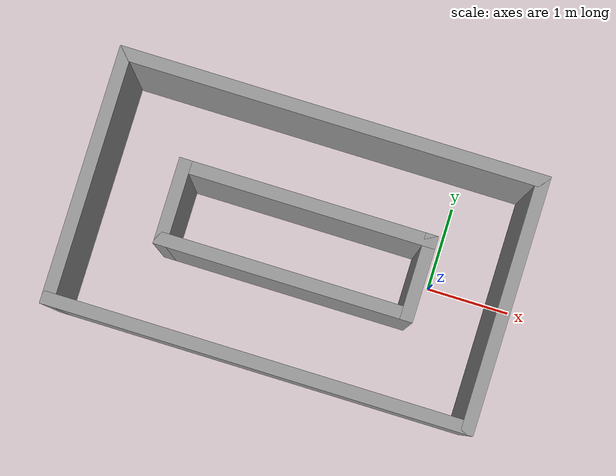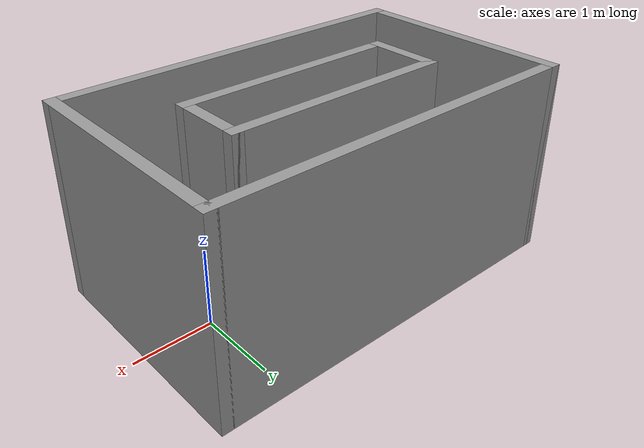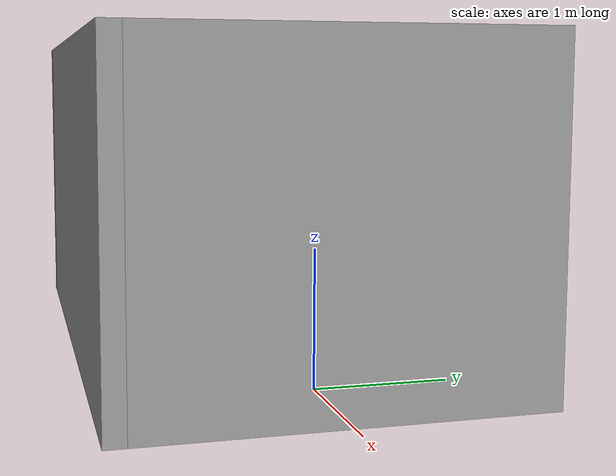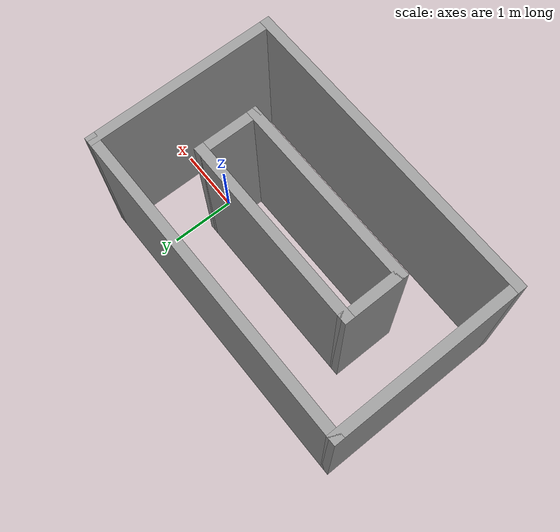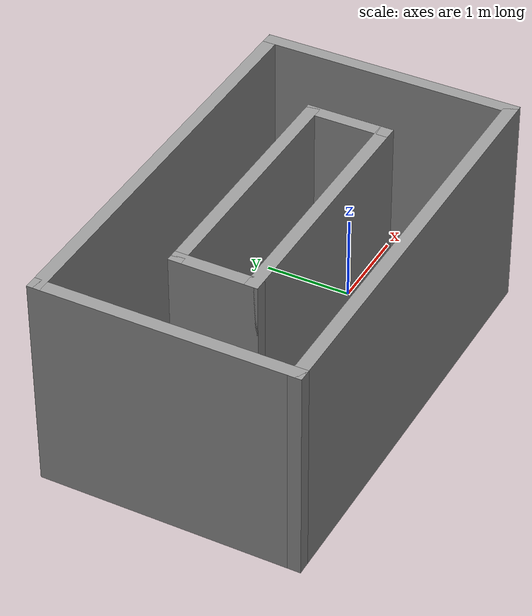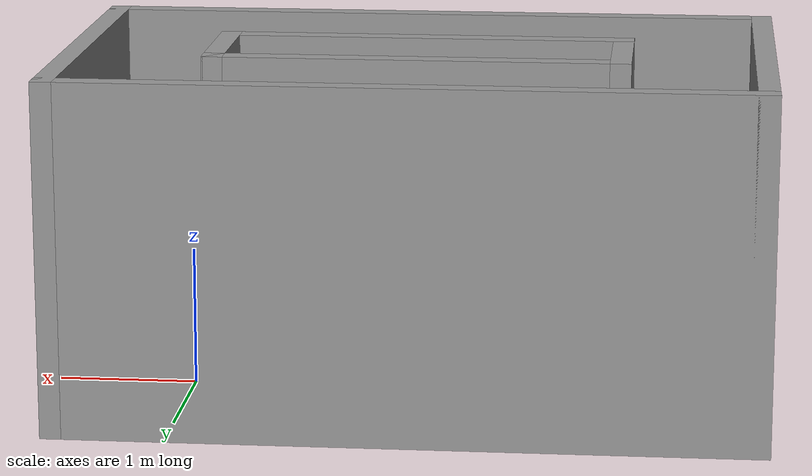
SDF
<?xml version='1.0'?>
<sdf version='1.7'>
  <model name='Building0516'>
    <pose>-1.64177 -0.063407 0 0 -0 0</pose>
    <link name='Wall_63'>
      <collision name='Wall_63_Collision'>
        <geometry>
          <box>
            <size>5 0.15 2.5</size>
          </box>
        </geometry>
        <pose>0 0 1.25 0 -0 0</pose>
      </collision>
      <visual name='Wall_63_Visual'>
        <pose>0 0 1.25 0 -0 0</pose>
        <geometry>
          <box>
            <size>5 0.15 2.5</size>
          </box>
        </geometry>
        <material>
          <script>
            <uri>file://media/materials/scripts/gazebo.material</uri>
            <name>Gazebo/Grey</name>
          </script>
          <ambient>1 1 1 1</ambient>
        </material>
        <meta>
          <layer>0</layer>
        </meta>
      </visual>
      <pose>0 1.425 0 0 -0 0</pose>
    </link>
    <link name='Wall_64'>
      <collision name='Wall_64_Collision'>
        <geometry>
          <box>
            <size>3 0.15 2.5</size>
          </box>
        </geometry>
        <pose>0 0 1.25 0 -0 0</pose>
      </collision>
      <visual name='Wall_64_Visual'>
        <pose>0 0 1.25 0 -0 0</pose>
        <geometry>
          <box>
            <size>3 0.15 2.5</size>
          </box>
        </geometry>
        <material>
          <script>
            <uri>file://media/materials/scripts/gazebo.material</uri>
            <name>Gazebo/Grey</name>
          </script>
          <ambient>1 1 1 1</ambient>
        </material>
        <meta>
          <layer>0</layer>
        </meta>
      </visual>
      <pose>2.425 -0 0 0 -0 -1.5708</pose>
    </link>
    <link name='Wall_65'>
      <collision name='Wall_65_Collision'>
        <geometry>
          <box>
            <size>5 0.15 2.5</size>
          </box>
        </geometry>
        <pose>0 0 1.25 0 -0 0</pose>
      </collision>
      <visual name='Wall_65_Visual'>
        <pose>0 0 1.25 0 -0 0</pose>
        <geometry>
          <box>
            <size>5 0.15 2.5</size>
          </box>
        </geometry>
        <material>
          <script>
            <uri>file://media/materials/scripts/gazebo.material</uri>
            <name>Gazebo/Grey</name>
          </script>
          <ambient>1 1 1 1</ambient>
        </material>
        <meta>
          <layer>0</layer>
        </meta>
      </visual>
      <pose>0 -1.425 0 0 -0 3.14159</pose>
    </link>
    <link name='Wall_66'>
      <collision name='Wall_66_Collision'>
        <geometry>
          <box>
            <size>3 0.15 2.5</size>
          </box>
        </geometry>
        <pose>0 0 1.25 0 -0 0</pose>
      </collision>
      <visual name='Wall_66_Visual'>
        <pose>0 0 1.25 0 -0 0</pose>
        <geometry>
          <box>
            <size>3 0.15 2.5</size>
          </box>
        </geometry>
        <material>
          <script>
            <uri>file://media/materials/scripts/gazebo.material</uri>
            <name>Gazebo/Grey</name>
          </script>
          <ambient>1 1 1 1</ambient>
        </material>
        <meta>
          <layer>0</layer>
        </meta>
      </visual>
      <pose>-2.425 -0 0 0 -0 1.5708</pose>
    </link>
    <link name='Wall_72'>
      <collision name='Wall_72_Collision'>
        <geometry>
          <box>
            <size>3 0.15 2.5</size>
          </box>
        </geometry>
        <pose>0 0 1.25 0 -0 0</pose>
      </collision>
      <visual name='Wall_72_Visual'>
        <pose>0 0 1.25 0 -0 0</pose>
        <geometry>
          <box>
            <size>3 0.15 2.5</size>
          </box>
        </geometry>
        <material>
          <script>
            <uri>file://media/materials/scripts/gazebo.material</uri>
            <name>Gazebo/Grey</name>
          </script>
          <ambient>1 1 1 1</ambient>
        </material>
        <meta>
          <layer>0</layer>
        </meta>
      </visual>
      <pose>-0.000147 0.425219 0 0 -0 0</pose>
    </link>
    <link name='Wall_73'>
      <collision name='Wall_73_Collision'>
        <geometry>
          <box>
            <size>1 0.15 2.5</size>
          </box>
        </geometry>
        <pose>0 0 1.25 0 -0 0</pose>
      </collision>
      <visual name='Wall_73_Visual'>
        <pose>0 0 1.25 0 -0 0</pose>
        <geometry>
          <box>
            <size>1 0.15 2.5</size>
          </box>
        </geometry>
        <material>
          <script>
            <uri>file://media/materials/scripts/gazebo.material</uri>
            <name>Gazebo/Grey</name>
          </script>
          <ambient>1 1 1 1</ambient>
        </material>
        <meta>
          <layer>0</layer>
        </meta>
      </visual>
      <pose>1.42485 0.000219 0 0 -0 -1.5708</pose>
    </link>
    <link name='Wall_74'>
      <collision name='Wall_74_Collision'>
        <geometry>
          <box>
            <size>3 0.15 2.5</size>
          </box>
        </geometry>
        <pose>0 0 1.25 0 -0 0</pose>
      </collision>
      <visual name='Wall_74_Visual'>
        <pose>0 0 1.25 0 -0 0</pose>
        <geometry>
          <box>
            <size>3 0.15 2.5</size>
          </box>
        </geometry>
        <material>
          <script>
            <uri>file://media/materials/scripts/gazebo.material</uri>
            <name>Gazebo/Grey</name>
          </script>
          <ambient>1 1 1 1</ambient>
        </material>
        <meta>
          <layer>0</layer>
        </meta>
      </visual>
      <pose>-0.000147 -0.424781 0 0 -0 3.14159</pose>
    </link>
    <link name='Wall_75'>
      <collision name='Wall_75_Collision'>
        <geometry>
          <box>
            <size>1 0.15 2.5</size>
          </box>
        </geometry>
        <pose>0 0 1.25 0 -0 0</pose>
      </collision>
      <visual name='Wall_75_Visual'>
        <pose>0 0 1.25 0 -0 0</pose>
        <geometry>
          <box>
            <size>1 0.15 2.5</size>
          </box>
        </geometry>
        <material>
          <script>
            <uri>file://media/materials/scripts/gazebo.material</uri>
            <name>Gazebo/Grey</name>
          </script>
          <ambient>1 1 1 1</ambient>
        </material>
        <meta>
          <layer>0</layer>
        </meta>
      </visual>
      <pose>-1.42515 0.000219 0 0 -0 1.5708</pose>
    </link>
    <static>1</static>
  </model>
</sdf>
